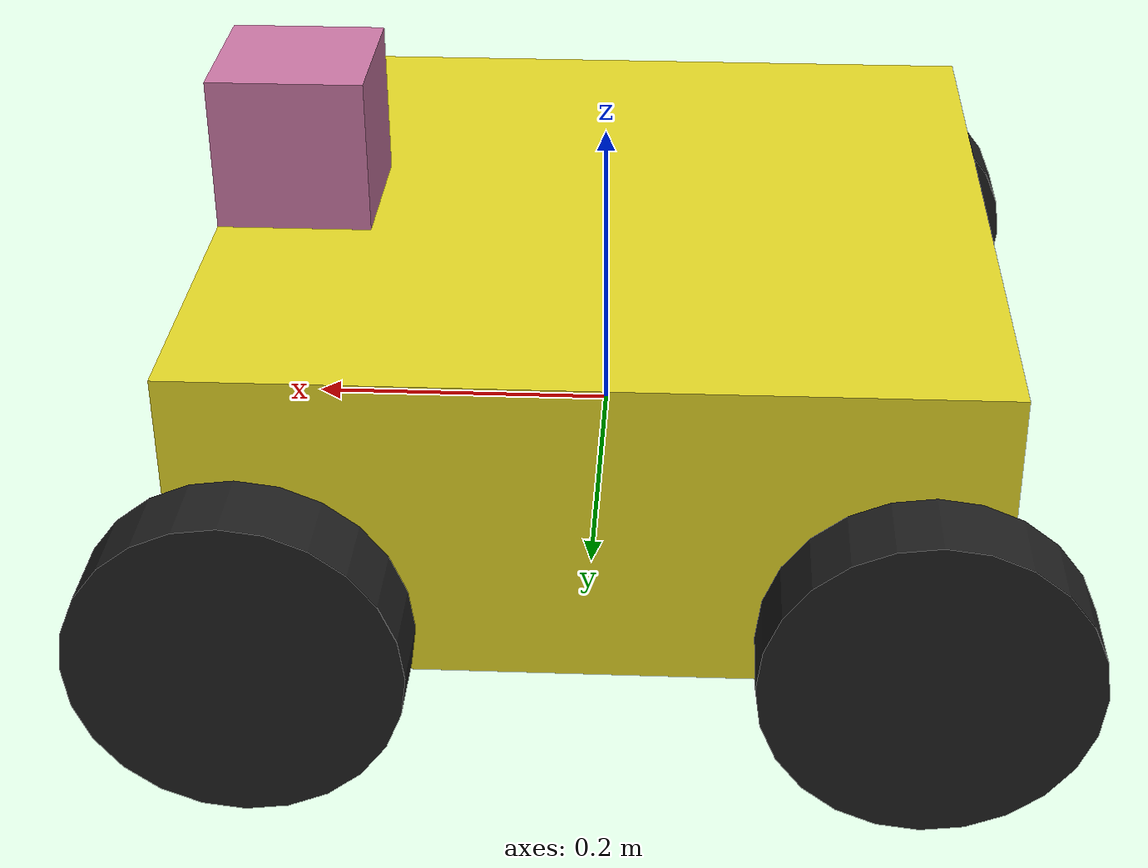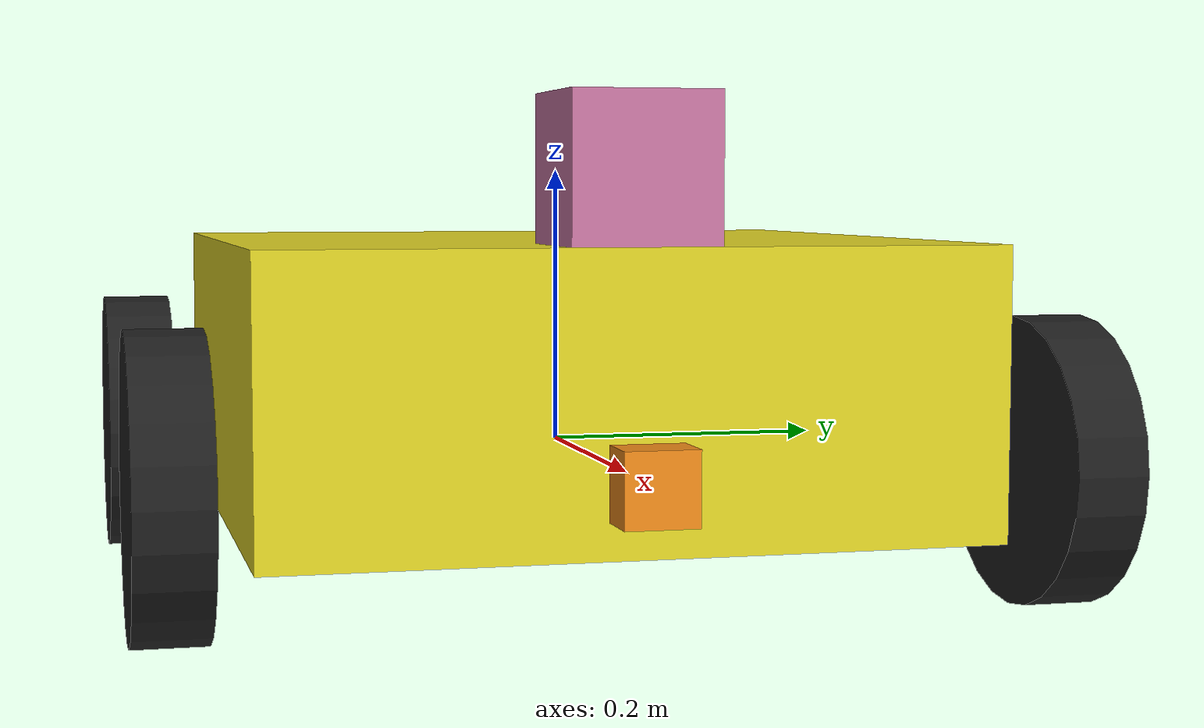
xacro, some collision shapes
<?xml version='1.0'?>

<robot name="atom" xmlns:xacro="http://www.ros.org/wiki/xacro">
	<xacro:property name="robot_name" value="atom" />
	<xacro:property name="robot_chassis_mass" value="15"/>
	<xacro:property name="robot_chassis_length" value="0.2"/>
	<xacro:property name="robot_chassis_radius" value="0.25"/>
	<xacro:property name="robot_caster_wheel_radius" value="0.05"/>
	<xacro:property name="robot_caster_wheel_radius_collision" value="0.0499"/>

	<xacro:property name="robot_wheel_mass" value="5"/>
	<xacro:property name="robot_wheel_length" value="0.05"/>
	<xacro:property name="robot_wheel_radius" value="0.1"/>

	<xacro:property name="camera_mass" value="0.1"/>
	<xacro:property name="hokoyu_mass" value="1e-5"/>

	<!-- Make Chassis of Bot -->
	<link name="chassis">
		<pose>0 0 0.1 0 0 0</pose>

		<inertial>
			<mass value="${robot_chassis_mass}"/>
      		<origin xyz="0.0 0 0" rpy=" 0 0 0"/>

      		<inertia
      			ixx="0.147116667" ixy="0" ixz="0"
      			iyy="0.334951167" iyz="0"
      			izz="0.3978345"
      		/>
		</inertial>

		<collision name="collision">
			<origin xyz="0 0 0.05" rpy=" 0 0 0"/>
			<geometry>
				<box size="0.5 0.5 0.2"/>
			</geometry>
		</collision>

		<visual name="chassis_visual">
			<origin xyz="0 0 0.05" rpy=" 0 0 0"/>
			<geometry>
				<box size="0.5 0.5 0.2"/>
			</geometry>

		</visual>

	</link>

	<!-- Right Wheel Back -->
	<link name="right_wheel_back">
		<inertial>
			<mass value="${robot_wheel_mass}"/>
			<origin xyz="0 0 0" rpy="0 1.5707 1.5707"/>
			<inertia
				ixx="0.1" ixy="0.0" ixz="0.0"
				iyy="0.1" iyz="0.0"
				izz="0.1"
			/>
		</inertial>

		<visual>
			<origin xyz="0 0 0" rpy="0 1.5707 1.5707"/>
			<geometry>
				<cylinder radius="${robot_wheel_radius}" length="${robot_wheel_length}"/>
			</geometry>
		</visual>

		<collision>
			<origin xyz="0 0 0" rpy="0 1.5707 1.5707"/>
			<geometry>
				<cylinder radius="${robot_wheel_radius}" length="${robot_wheel_length}"/>
			</geometry>
		</collision>

	</link>

	<!-- Right Wheel Front-->
	<link name="right_wheel_front">
		<inertial>
			<mass value="${robot_wheel_mass}"/>
			<origin xyz="0 0 0" rpy="0 1.5707 1.5707"/>
			<inertia
				ixx="0.1" ixy="0.0" ixz="0.0"
				iyy="0.1" iyz="0.0"
				izz="0.1"
			/>
		</inertial>

		<visual>
			<origin xyz="0 0 0" rpy="0 1.5707 1.5707"/>
			<geometry>
				<cylinder radius="${robot_wheel_radius}" length="${robot_wheel_length}"/>
			</geometry>
		</visual>

		<collision>
			<origin xyz="0 0 0" rpy="0 1.5707 1.5707"/>
			<geometry>
				<cylinder radius="${robot_wheel_radius}" length="${robot_wheel_length}"/>
			</geometry>
		</collision>

	</link>

	<!-- Left wheel Back-->
	<link name="left_wheel_back">
		<inertial>
			<mass value="${robot_wheel_mass}"/>
			<origin xyz="0 0 0" rpy="0 1.5707 1.5707"/>
			<inertia
				ixx="0.1" ixy="0.0" ixz="0.0"
				iyy="0.1" iyz="0.0"
				izz="0.1"
			/>
		</inertial>

		<visual>
			<origin xyz="0 0 0" rpy="0 1.5707 1.5707"/>
			<geometry>
				<cylinder radius="${robot_wheel_radius}" length="${robot_wheel_length}"/>
			</geometry>
		</visual>

		<collision>
			<origin xyz="0 0 0" rpy="0 1.5707 1.5707"/>
			<geometry>
				<cylinder radius="${robot_wheel_radius}" length="${robot_wheel_length}"/>
			</geometry>
		</collision>

	</link>

	<!-- Left wheel Front-->
	<link name="left_wheel_front">
		<inertial>
			<mass value="${robot_wheel_mass}"/>
			<origin xyz="0 0 0" rpy="0 1.5707 1.5707"/>
			<inertia
				ixx="0.1" ixy="0.0" ixz="0.0"
				iyy="0.1" iyz="0.0"
				izz="0.1"
			/>
		</inertial>

		<visual>
			<origin xyz="0 0 0" rpy="0 1.5707 1.5707"/>
			<geometry>
				<cylinder radius="${robot_wheel_radius}" length="${robot_wheel_length}"/>
			</geometry>
		</visual>

		<collision>
			<origin xyz="0 0 0" rpy="0 1.5707 1.5707"/>
			<geometry>
				<cylinder radius="${robot_wheel_radius}" length="${robot_wheel_length}"/>
			</geometry>
		</collision>

	</link>

	<!-- Camera -->
	<link name="camera">
		<inertial>
			<mass value="${camera_mass}"/>
			<origin xyz="0 0 0" rpy="0 0 0"/>
			<inertia
		        ixx="1e-6" ixy="0.0" ixz="0.0"
		        iyy="1e-6" iyz="0.0"
		        izz="1e-6"
		      />
		</inertial>

		<visual>
			<origin xyz="0 0 0" rpy="0 0 0"/>
			<geometry>
				<box size="0.05 0.05 0.05"/>
			</geometry>
		</visual>

		<collision>
			<origin xyz="0 0 0" rpy="0 0 0"/>
			<geometry>
				<box size="0.05 0.05 0.05"/>
			</geometry>
		</collision>
	</link>

	<!-- Hokuyo Lidar -->
	<link name="hokuyo">
		<inertial>
			<mass value="${hokoyu_mass}"/>
			<origin xyz="0 0 0" rpy="0 0 0"/>

			<inertia
		        ixx="1e-6" ixy="0.0" ixz="0.0"
		        iyy="1e-6" iyz="0.0"
		        izz="1e-6"
		      />
		</inertial>

		<visual>
			<origin xyz="0 0 0" rpy="0 0 0"/>
			<geometry>
				<mesh filename="package://atom/meshes/hokuyo.dae"/>
			</geometry>
		</visual>

		<collision>
			<origin xyz="0 0 0" rpy="0 0 0"/>
			<geometry>
				<box size="0.1 0.1 0.1"/>
			</geometry>
		</collision>
	</link>

	<!-- Project center to the ground -->
	<link name="robot_footprint"></link>

	<!-- Define Joints -->

	<!-- Right Wheel Joint Back-->
	<joint type="continuous" name="right_wheel_hinge_back">
	    <origin xyz="-0.2 -0.30 0" rpy="0 0 0" />
	    <parent link="chassis"/>
	    <child link="right_wheel_back" />
	    <axis xyz="0 1 0" rpy="0 0 0" />
	    <limit effort="10000" velocity="1000" />
	    <dynamics damping="1.0" friction="1.0" />
	</joint>

	<!-- Right Wheel Joint Front-->
	<joint type="continuous" name="right_wheel_hinge_front">
	    <origin xyz="0.2 -0.30 0" rpy="0 0 0" />
	    <parent link="chassis"/>
	    <child link="right_wheel_front" />
	    <axis xyz="0 1 0" rpy="0 0 0" />
	    <limit effort="10000" velocity="1000" />
	    <dynamics damping="1.0" friction="1.0" />
	</joint>

	<!-- Left Wheel Joint Back-->
	<joint type="continuous" name="left_wheel_hinge_back">
	    <origin xyz="-0.2 0.30 0" rpy="0 0 0" />
	    <parent link="chassis"/>
	    <child link="left_wheel_back" />
	    <axis xyz="0 1 0" rpy="0 0 0" />
	    <limit effort="10000" velocity="1000" />
	    <dynamics damping="1.0" friction="1.0" />
	</joint>

	<!-- Left Wheel Joint Front-->
	<joint type="continuous" name="left_wheel_hinge_front">
	    <origin xyz="0.2 0.30 0" rpy="0 0 0" />
	    <parent link="chassis"/>
	    <child link="left_wheel_front" />
	    <axis xyz="0 1 0" rpy="0 0 0" />
	    <limit effort="10000" velocity="1000" />
	    <dynamics damping="1.0" friction="1.0" />
	</joint>

	<!-- Camera Joint -->
	<joint name="camera_joint" type="fixed">
		<origin xyz="0.26 0 0" rpy="0 0 0" />
		<parent link="chassis"/>
		<child link="camera" />
		<axis xyz="0 1 0"/>
	</joint>

	<!-- Hokoyu Joint -->
	<joint name="hokuyo_joint" type="fixed">
	    <origin xyz="0.2 0 0.2" rpy="0 0 0" />
	    <parent link="chassis"/>
	    <child link="hokuyo" />
	    <axis xyz="0 1 0"/>
	</joint>

	<joint name="robot_footprint_joint" type="fixed">
		<origin xyz="0 0 0" rpy="0 0 0" />
		<parent link="robot_footprint"/>
		<child link="chassis" />
	</joint>

	<!-- Color of bot -->
	<gazebo reference="left_wheel_front">
		<material>Gazebo/Black</material>
		<kp>1000000.0</kp> <!-- kp and kd for rubber -->
		<kd>100.0</kd>
		<mu1>1.0</mu1>
		<mu2>1.0</mu2>
		<maxVel>1.0</maxVel>
		<minDepth>0.00</minDepth>
	</gazebo>

	<gazebo reference="left_wheel_back">
		<material>Gazebo/Black</material>
		<kp>1000000.0</kp> <!-- kp and kd for rubber -->
		<kd>100.0</kd>
		<mu1>1.0</mu1>
		<mu2>1.0</mu2>
		<maxVel>1.0</maxVel>
		<minDepth>0.00</minDepth>
	</gazebo>

	<gazebo reference="right_wheel_front">
		<material>Gazebo/Black</material>
		<kp>1000000.0</kp> <!-- kp and kd for rubber -->
		<kd>100.0</kd>
		<mu1>1.0</mu1>
		<mu2>1.0</mu2>
		<maxVel>1.0</maxVel>
		<minDepth>0.00</minDepth>
	</gazebo>
	<gazebo reference="right_wheel_back">
		<material>Gazebo/Black</material>
		<kp>1000000.0</kp> <!-- kp and kd for rubber -->
		<kd>100.0</kd>
		<mu1>1.0</mu1>
		<mu2>1.0</mu2>
		<maxVel>1.0</maxVel>
		<minDepth>0.00</minDepth>
	</gazebo>

	<gazebo reference="camera">
		<material>Gazebo/Orange</material>
	</gazebo>

	<gazebo reference="chassis">
		<material>Gazebo/Yellow</material>
	</gazebo>

	<!-- Motor, Camera and Lidar Simulation -->
	<xacro:include filename="$(find atom)/urdf/atom.gazebo" />

	<gazebo reference="chassis">
		<gravity>true</gravity>
		<sensor name="imu_sensor" type="imu">
     			<always_on>true</always_on>
     			<update_rate>10</update_rate>
     			<visualize>true</visualize>
     			<topic>__default_topic__</topic>
     			<plugin filename="libgazebo_ros_imu_sensor.so" name="imu_plugin">
      				<topicName>imu</topicName>
      				<bodyName>imu_link</bodyName>
      				<updateRateHZ>10.0</updateRateHZ>
      				<gaussianNoise>0.0</gaussianNoise>
      				<xyzOffset>0 0 0</xyzOffset>
      				<rpyOffset>0 0 -1.57</rpyOffset>
      				<frameName>chassis</frameName>
      				<initialOrientationAsReference>false</initialOrientationAsReference>
     			</plugin>
     			<pose>0 0 0 0 0 0</pose>
    		</sensor>
   	</gazebo>
   	<gazebo>
    		<plugin name="novatel_gps_sim" filename="libhector_gazebo_ros_gps.so">
      			<alwaysOn>1</alwaysOn>
      			<updateRate>10</updateRate>
      			<bodyName>chassis</bodyName>
      			<topicName>fix</topicName>
      			<velocityTopicName>fix_velocity</velocityTopicName>
      			<gaussianNoise>0.0 0.0 0.0</gaussianNoise>
      			<velocityGaussianNoise>0.0 0.0 0.0</velocityGaussianNoise>
    		</plugin>
   	</gazebo>

</robot>
